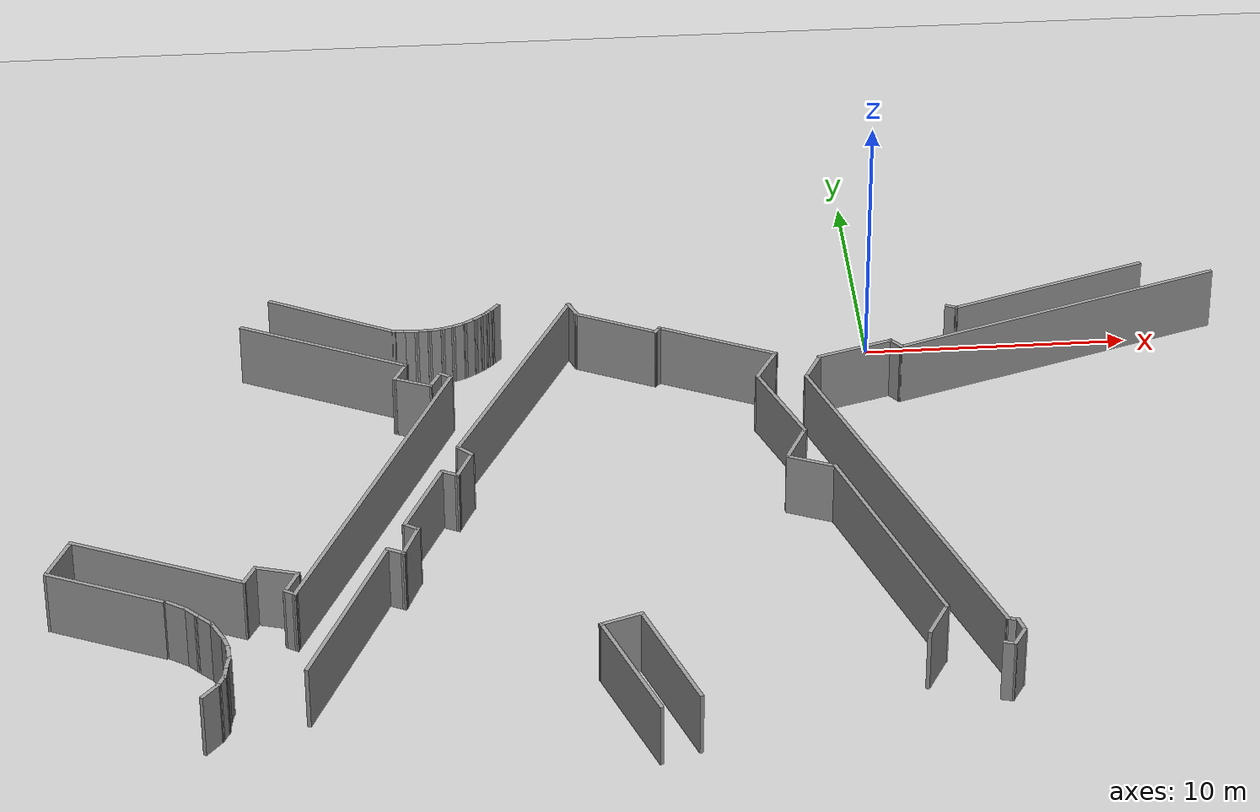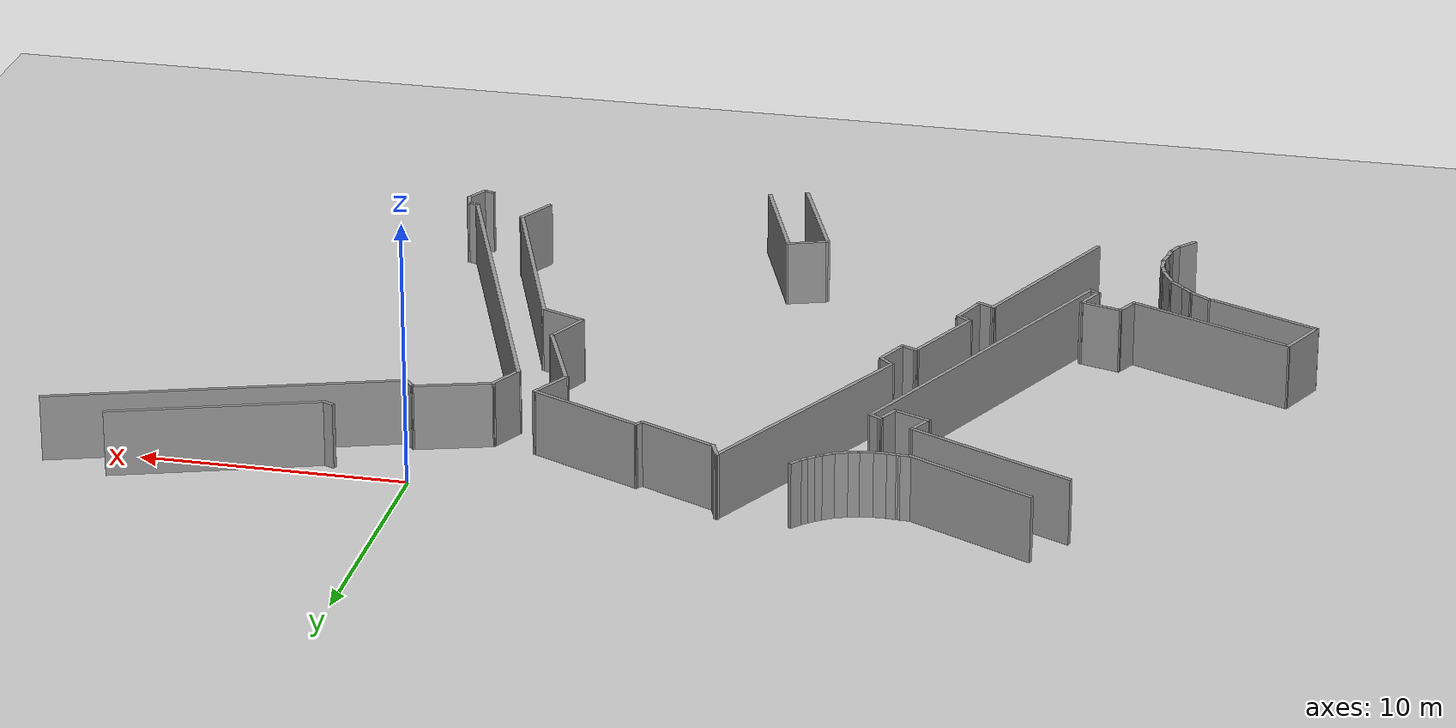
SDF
<sdf version="1.6">
 <world name="default">
  <model name="ground_plane">
   <static>1</static>
   <link name="link">
    <collision name="collision">
     <geometry><plane><normal>0 0 1</normal><size>100 100</size></plane></geometry>
     <surface><friction><ode><mu>100</mu><mu2>50</mu2></ode></friction></surface>
    </collision>
    <visual name="visual">
     <cast_shadows>0</cast_shadows>
     <geometry><plane><normal>0 0 1</normal><size>100 100</size></plane></geometry>
     <material>
      <script><uri>file://media/materials/scripts/gazebo.material</uri><name>Gazebo/Grey</name></script>
     </material>
    </visual>
   </link>
  </model>
  <model name="3rd_floor">
   <pose>-15.2077 -10.9942 0 0 -0 0</pose>
   <link name="Wall_10">
    <collision name="Wall_10_Collision">
     <geometry><box><size>13.264 0.15 2.5</size></box></geometry>
     <pose>0 0 1.25 0 -0 0</pose>
    </collision>
    <visual name="Wall_10_Visual">
     <pose>0 0 1.25 0 -0 0</pose>
     <geometry><box><size>13.264 0.15 2.5</size></box></geometry>
     <material>
      <script><uri>file://media/materials/scripts/gazebo.material</uri><name>Gazebo/Grey</name></script>
      <ambient>1 1 1 1</ambient>
     </material>
    </visual>
    <pose>22.3323 9.76472 0 0 0 -2.81688</pose>
   </link>
   <link name="Wall_11">
    <collision name="Wall_11_Collision">
     <geometry><box><size>0.704563 0.15 2.5</size></box></geometry>
     <pose>0 0 1.25 0 -0 0</pose>
    </collision>
    <visual name="Wall_11_Visual">
     <pose>0 0 1.25 0 -0 0</pose>
     <geometry><box><size>0.704563 0.15 2.5</size></box></geometry>
     <material>
      <script><uri>file://media/materials/scripts/gazebo.material</uri><name>Gazebo/Grey</name></script>
      <ambient>1 1 1 1</ambient>
     </material>
    </visual>
    <pose>15.9334 7.89717 0 0 -0 2.29921</pose>
   </link>
   <link name="Wall_12">
    <collision name="Wall_12_Collision">
     <geometry><box><size>3.04965 0.15 2.5</size></box></geometry>
     <pose>0 0 1.25 0 -0 0</pose>
    </collision>
    <visual name="Wall_12_Visual">
     <pose>0 0 1.25 0 -0 0</pose>
     <geometry><box><size>3.04965 0.15 2.5</size></box></geometry>
     <material>
      <script><uri>file://media/materials/scripts/gazebo.material</uri><name>Gazebo/Grey</name></script>
      <ambient>1 1 1 1</ambient>
     </material>
    </visual>
    <pose>14.3645 7.6734 0 0 0 -2.83997</pose>
   </link>
   <link name="Wall_13">
    <collision name="Wall_13_Collision">
     <geometry><box><size>1.54276 0.15 2.5</size></box></geometry>
     <pose>0 0 1.25 0 -0 0</pose>
    </collision>
    <visual name="Wall_13_Visual">
     <pose>0 0 1.25 0 -0 0</pose>
     <geometry><box><size>1.54276 0.15 2.5</size></box></geometry>
     <material>
      <script><uri>file://media/materials/scripts/gazebo.material</uri><name>Gazebo/Grey</name></script>
      <ambient>1 1 1 1</ambient>
     </material>
    </visual>
    <pose>12.6693 6.61951 0 0 0 -2.0334</pose>
   </link>
   <link name="Wall_14">
    <collision name="Wall_14_Collision">
     <geometry><box><size>16.212 0.15 2.5</size></box></geometry>
     <pose>0 0 1.25 0 -0 0</pose>
    </collision>
    <visual name="Wall_14_Visual">
     <pose>0 0 1.25 0 -0 0</pose>
     <geometry><box><size>16.212 0.15 2.5</size></box></geometry>
     <material>
      <script><uri>file://media/materials/scripts/gazebo.material</uri><name>Gazebo/Grey</name></script>
      <ambient>1 1 1 1</ambient>
     </material>
    </visual>
    <pose>15.0905 -1.55572 0 0 0 -1.22369</pose>
   </link>
   <link name="Wall_15">
    <collision name="Wall_15_Collision">
     <geometry><box><size>0.5 0.15 2.5</size></box></geometry>
     <pose>0 0 1.25 0 -0 0</pose>
    </collision>
    <visual name="Wall_15_Visual">
     <pose>0 0 1.25 0 -0 0</pose>
     <geometry><box><size>0.5 0.15 2.5</size></box></geometry>
     <material>
      <script><uri>file://media/materials/scripts/gazebo.material</uri><name>Gazebo/Grey</name></script>
      <ambient>1 1 1 1</ambient>
     </material>
    </visual>
    <pose>17.9914 -9.15306 0 0 0 -0.261799</pose>
   </link>
   <link name="Wall_16">
    <collision name="Wall_16_Collision">
     <geometry><box><size>0.75 0.15 2.5</size></box></geometry>
     <pose>0 0 1.25 0 -0 0</pose>
    </collision>
    <visual name="Wall_16_Visual">
     <pose>0 0 1.25 0 -0 0</pose>
     <geometry><box><size>0.75 0.15 2.5</size></box></geometry>
     <material>
      <script><uri>file://media/materials/scripts/gazebo.material</uri><name>Gazebo/Grey</name></script>
      <ambient>1 1 1 1</ambient>
     </material>
    </visual>
    <pose>18.2381 -9.48813 0 0 0 -1.309</pose>
   </link>
   <link name="Wall_17">
    <collision name="Wall_17_Collision">
     <geometry><box><size>1 0.15 2.5</size></box></geometry>
     <pose>0 0 1.25 0 -0 0</pose>
    </collision>
    <visual name="Wall_17_Visual">
     <pose>0 0 1.25 0 -0 0</pose>
     <geometry><box><size>1 0.15 2.5</size></box></geometry>
     <material>
      <script><uri>file://media/materials/scripts/gazebo.material</uri><name>Gazebo/Grey</name></script>
      <ambient>1 1 1 1</ambient>
     </material>
    </visual>
    <pose>18.1033 -10.146 0 0 0 -2.0944</pose>
   </link>
   <link name="Wall_18">
    <collision name="Wall_18_Collision">
     <geometry><box><size>0.5 0.15 2.5</size></box></geometry>
     <pose>0 0 1.25 0 -0 0</pose>
    </collision>
    <visual name="Wall_18_Visual">
     <pose>0 0 1.25 0 -0 0</pose>
     <geometry><box><size>0.5 0.15 2.5</size></box></geometry>
     <material>
      <script><uri>file://media/materials/scripts/gazebo.material</uri><name>Gazebo/Grey</name></script>
      <ambient>1 1 1 1</ambient>
     </material>
    </visual>
    <pose>17.7217 -10.4687 0 0 -0 2.87979</pose>
   </link>
   <link name="Wall_495">
    <collision name="Wall_495_Collision">
     <geometry><box><size>7.96627 0.15 2.5</size></box></geometry>
     <pose>0 0 1.25 0 -0 0</pose>
    </collision>
    <visual name="Wall_495_Visual">
     <pose>0 0 1.25 0 -0 0</pose>
     <geometry><box><size>7.96627 0.15 2.5</size></box></geometry>
     <material>
      <script><uri>file://media/materials/scripts/gazebo.material</uri><name>Gazebo/Grey</name></script>
      <ambient>1 1 1 1</ambient>
     </material>
    </visual>
    <pose>22.2058 11.362 0 0 0 -2.81489</pose>
   </link>
   <link name="Wall_496">
    <collision name="Wall_496_Collision">
     <geometry><box><size>0.519623 0.15 2.5</size></box></geometry>
     <pose>0 0 1.25 0 -0 0</pose>
    </collision>
    <visual name="Wall_496_Visual">
     <pose>0 0 1.25 0 -0 0</pose>
     <geometry><box><size>0.519623 0.15 2.5</size></box></geometry>
     <material>
      <script><uri>file://media/materials/scripts/gazebo.material</uri><name>Gazebo/Grey</name></script>
      <ambient>1 1 1 1</ambient>
     </material>
    </visual>
    <pose>18.3362 10.1843 0 0 -0 2.71496</pose>
   </link>
   <link name="Wall_500">
    <collision name="Wall_500_Collision">
     <geometry><box><size>4.79051 0.15 2.5</size></box></geometry>
     <pose>0 0 1.25 0 -0 0</pose>
    </collision>
    <visual name="Wall_500_Visual">
     <pose>0 0 1.25 0 -0 0</pose>
     <geometry><box><size>4.79051 0.15 2.5</size></box></geometry>
     <material>
      <script><uri>file://media/materials/scripts/gazebo.material</uri><name>Gazebo/Grey</name></script>
      <ambient>1 1 1 1</ambient>
     </material>
    </visual>
    <pose>9.23979 8.57662 0 0 -0 2.69588</pose>
   </link>
   <link name="Wall_501">
    <collision name="Wall_501_Collision">
     <geometry><box><size>0.447898 0.15 2.5</size></box></geometry>
     <pose>0 0 1.25 0 -0 0</pose>
    </collision>
    <visual name="Wall_501_Visual">
     <pose>0 0 1.25 0 -0 0</pose>
     <geometry><box><size>0.447898 0.15 2.5</size></box></geometry>
     <material>
      <script><uri>file://media/materials/scripts/gazebo.material</uri><name>Gazebo/Grey</name></script>
      <ambient>1 1 1 1</ambient>
     </material>
    </visual>
    <pose>7.05316 9.46058 0 0 0 -2.24554</pose>
   </link>
   <link name="Wall_502">
    <collision name="Wall_502_Collision">
     <geometry><box><size>3.35441 0.15 2.5</size></box></geometry>
     <pose>0 0 1.25 0 -0 0</pose>
    </collision>
    <visual name="Wall_502_Visual">
     <pose>0 0 1.25 0 -0 0</pose>
     <geometry><box><size>3.35441 0.15 2.5</size></box></geometry>
     <material>
      <script><uri>file://media/materials/scripts/gazebo.material</uri><name>Gazebo/Grey</name></script>
      <ambient>1 1 1 1</ambient>
     </material>
    </visual>
    <pose>5.51788 10.0421 0 0 -0 2.69093</pose>
   </link>
   <link name="Wall_503">
    <collision name="Wall_503_Collision">
     <geometry><box><size>0.901617 0.15 2.5</size></box></geometry>
     <pose>0 0 1.25 0 -0 0</pose>
    </collision>
    <visual name="Wall_503_Visual">
     <pose>0 0 1.25 0 -0 0</pose>
     <geometry><box><size>0.901617 0.15 2.5</size></box></geometry>
     <material>
      <script><uri>file://media/materials/scripts/gazebo.material</uri><name>Gazebo/Grey</name></script>
      <ambient>1 1 1 1</ambient>
     </material>
    </visual>
    <pose>3.93606 11.0889 0 0 -0 1.9513</pose>
   </link>
   <link name="Wall_504">
    <collision name="Wall_504_Collision">
     <geometry><box><size>10.2204 0.15 2.5</size></box></geometry>
     <pose>0 0 1.25 0 -0 0</pose>
    </collision>
    <visual name="Wall_504_Visual">
     <pose>0 0 1.25 0 -0 0</pose>
     <geometry><box><size>10.2204 0.15 2.5</size></box></geometry>
     <material>
      <script><uri>file://media/materials/scripts/gazebo.material</uri><name>Gazebo/Grey</name></script>
      <ambient>1 1 1 1</ambient>
     </material>
    </visual>
    <pose>1.51682 6.94829 0 0 0 -2.04064</pose>
   </link>
   <link name="Wall_505">
    <collision name="Wall_505_Collision">
     <geometry><box><size>0.807948 0.15 2.5</size></box></geometry>
     <pose>0 0 1.25 0 -0 0</pose>
    </collision>
    <visual name="Wall_505_Visual">
     <pose>0 0 1.25 0 -0 0</pose>
     <geometry><box><size>0.807948 0.15 2.5</size></box></geometry>
     <material>
      <script><uri>file://media/materials/scripts/gazebo.material</uri><name>Gazebo/Grey</name></script>
      <ambient>1 1 1 1</ambient>
     </material>
    </visual>
    <pose>-0.530233 2.22611 0 0 0 -0.785398</pose>
   </link>
   <link name="Wall_506">
    <collision name="Wall_506_Collision">
     <geometry><box><size>1.52462 0.15 2.5</size></box></geometry>
     <pose>0 0 1.25 0 -0 0</pose>
    </collision>
    <visual name="Wall_506_Visual">
     <pose>0 0 1.25 0 -0 0</pose>
     <geometry><box><size>1.52462 0.15 2.5</size></box></geometry>
     <material>
      <script><uri>file://media/materials/scripts/gazebo.material</uri><name>Gazebo/Grey</name></script>
      <ambient>1 1 1 1</ambient>
     </material>
    </visual>
    <pose>-0.576757 1.36542 0 0 0 -1.98902</pose>
   </link>
   <link name="Wall_507">
    <collision name="Wall_507_Collision">
     <geometry><box><size>0.774184 0.15 2.5</size></box></geometry>
     <pose>0 0 1.25 0 -0 0</pose>
    </collision>
    <visual name="Wall_507_Visual">
     <pose>0 0 1.25 0 -0 0</pose>
     <geometry><box><size>0.774184 0.15 2.5</size></box></geometry>
     <material>
      <script><uri>file://media/materials/scripts/gazebo.material</uri><name>Gazebo/Grey</name></script>
      <ambient>1 1 1 1</ambient>
     </material>
    </visual>
    <pose>-1.13505 0.876915 0 0 -0 2.67794</pose>
   </link>
   <link name="Wall_508">
    <collision name="Wall_508_Collision">
     <geometry><box><size>3.58459 0.15 2.5</size></box></geometry>
     <pose>0 0 1.25 0 -0 0</pose>
    </collision>
    <visual name="Wall_508_Visual">
     <pose>0 0 1.25 0 -0 0</pose>
     <geometry><box><size>3.58459 0.15 2.5</size></box></geometry>
     <material>
      <script><uri>file://media/materials/scripts/gazebo.material</uri><name>Gazebo/Grey</name></script>
      <ambient>1 1 1 1</ambient>
     </material>
    </visual>
    <pose>-2.13531 -0.542065 0 0 0 -2.00415</pose>
   </link>
   <link name="Wall_509">
    <collision name="Wall_509_Collision">
     <geometry><box><size>0.692557 0.15 2.5</size></box></geometry>
     <pose>0 0 1.25 0 -0 0</pose>
    </collision>
    <visual name="Wall_509_Visual">
     <pose>0 0 1.25 0 -0 0</pose>
     <geometry><box><size>0.692557 0.15 2.5</size></box></geometry>
     <material>
      <script><uri>file://media/materials/scripts/gazebo.material</uri><name>Gazebo/Grey</name></script>
      <ambient>1 1 1 1</ambient>
     </material>
    </visual>
    <pose>-2.62381 -2.24019 0 0 0 -0.54042</pose>
   </link>
   <link name="Wall_511">
    <collision name="Wall_511_Collision">
     <geometry><box><size>1.65323 0.15 2.5</size></box></geometry>
     <pose>0 0 1.25 0 -0 0</pose>
    </collision>
    <visual name="Wall_511_Visual">
     <pose>0 0 1.25 0 -0 0</pose>
     <geometry><box><size>1.65323 0.15 2.5</size></box></geometry>
     <material>
      <script><uri>file://media/materials/scripts/gazebo.material</uri><name>Gazebo/Grey</name></script>
      <ambient>1 1 1 1</ambient>
     </material>
    </visual>
    <pose>-2.67033 -3.07762 0 0 0 -1.9513</pose>
   </link>
   <link name="Wall_512">
    <collision name="Wall_512_Collision">
     <geometry><box><size>0.774184 0.15 2.5</size></box></geometry>
     <pose>0 0 1.25 0 -0 0</pose>
    </collision>
    <visual name="Wall_512_Visual">
     <pose>0 0 1.25 0 -0 0</pose>
     <geometry><box><size>0.774184 0.15 2.5</size></box></geometry>
     <material>
      <script><uri>file://media/materials/scripts/gazebo.material</uri><name>Gazebo/Grey</name></script>
      <ambient>1 1 1 1</ambient>
     </material>
    </visual>
    <pose>-3.22862 -3.63591 0 0 -0 2.67794</pose>
   </link>
   <link name="Wall_513">
    <collision name="Wall_513_Collision">
     <geometry><box><size>7.3774 0.15 2.5</size></box></geometry>
     <pose>0 0 1.25 0 -0 0</pose>
    </collision>
    <visual name="Wall_513_Visual">
     <pose>0 0 1.25 0 -0 0</pose>
     <geometry><box><size>7.3774 0.15 2.5</size></box></geometry>
     <material>
      <script><uri>file://media/materials/scripts/gazebo.material</uri><name>Gazebo/Grey</name></script>
      <ambient>1 1 1 1</ambient>
     </material>
    </visual>
    <pose>-4.97327 -6.79953 0 0 0 -1.98837</pose>
   </link>
   <link name="Wall_516">
    <collision name="Wall_516_Collision">
     <geometry><box><size>5.11064 0.15 2.5</size></box></geometry>
     <pose>0 0 1.25 0 -0 0</pose>
    </collision>
    <visual name="Wall_516_Visual">
     <pose>0 0 1.25 0 -0 0</pose>
     <geometry><box><size>5.11064 0.15 2.5</size></box></geometry>
     <material>
      <script><uri>file://media/materials/scripts/gazebo.material</uri><name>Gazebo/Grey</name></script>
      <ambient>1 1 1 1</ambient>
     </material>
    </visual>
    <pose>4.61066 -10.7075 0 0 -0 1.92518</pose>
   </link>
   <link name="Wall_517">
    <collision name="Wall_517_Collision">
     <geometry><box><size>1.68035 0.15 2.5</size></box></geometry>
     <pose>0 0 1.25 0 -0 0</pose>
    </collision>
    <visual name="Wall_517_Visual">
     <pose>0 0 1.25 0 -0 0</pose>
     <geometry><box><size>1.68035 0.15 2.5</size></box></geometry>
     <material>
      <script><uri>file://media/materials/scripts/gazebo.material</uri><name>Gazebo/Grey</name></script>
      <ambient>1 1 1 1</ambient>
     </material>
    </visual>
    <pose>4.47109 -8.12546 0 0 -0 0.340979</pose>
   </link>
   <link name="Wall_518">
    <collision name="Wall_518_Collision">
     <geometry><box><size>5.09468 0.15 2.5</size></box></geometry>
     <pose>0 0 1.25 0 -0 0</pose>
    </collision>
    <visual name="Wall_518_Visual">
     <pose>0 0 1.25 0 -0 0</pose>
     <geometry><box><size>5.09468 0.15 2.5</size></box></geometry>
     <material>
      <script><uri>file://media/materials/scripts/gazebo.material</uri><name>Gazebo/Grey</name></script>
      <ambient>1 1 1 1</ambient>
     </material>
    </visual>
    <pose>6.02964 -10.1958 0 0 0 -1.22524</pose>
   </link>
   <link name="Wall_520">
    <collision name="Wall_520_Collision">
     <geometry><box><size>1.73181 0.15 2.5</size></box></geometry>
     <pose>0 0 1.25 0 -0 0</pose>
    </collision>
    <visual name="Wall_520_Visual">
     <pose>0 0 1.25 0 -0 0</pose>
     <geometry><box><size>1.73181 0.15 2.5</size></box></geometry>
     <material>
      <script><uri>file://media/materials/scripts/gazebo.material</uri><name>Gazebo/Grey</name></script>
      <ambient>1 1 1 1</ambient>
     </material>
    </visual>
    <pose>15.4275 -8.93963 0 0 -0 1.08084</pose>
   </link>
   <link name="Wall_521">
    <collision name="Wall_521_Collision">
     <geometry><box><size>9.16952 0.15 2.5</size></box></geometry>
     <pose>0 0 1.25 0 -0 0</pose>
    </collision>
    <visual name="Wall_521_Visual">
     <pose>0 0 1.25 0 -0 0</pose>
     <geometry><box><size>9.16952 0.15 2.5</size></box></geometry>
     <material>
      <script><uri>file://media/materials/scripts/gazebo.material</uri><name>Gazebo/Grey</name></script>
      <ambient>1 1 1 1</ambient>
     </material>
    </visual>
    <pose>14.3109 -3.98483 0 0 -0 1.90723</pose>
   </link>
   <link name="Wall_522">
    <collision name="Wall_522_Collision">
     <geometry><box><size>1.92158 0.15 2.5</size></box></geometry>
     <pose>0 0 1.25 0 -0 0</pose>
    </collision>
    <visual name="Wall_522_Visual">
     <pose>0 0 1.25 0 -0 0</pose>
     <geometry><box><size>1.92158 0.15 2.5</size></box></geometry>
     <material>
      <script><uri>file://media/materials/scripts/gazebo.material</uri><name>Gazebo/Grey</name></script>
      <ambient>1 1 1 1</ambient>
     </material>
    </visual>
    <pose>12.008 0.621034 0 0 -0 2.7367</pose>
   </link>
   <link name="Wall_524">
    <collision name="Wall_524_Collision">
     <geometry><box><size>1.79487 0.15 2.5</size></box></geometry>
     <pose>0 0 1.25 0 -0 0</pose>
    </collision>
    <visual name="Wall_524_Visual">
     <pose>0 0 1.25 0 -0 0</pose>
     <geometry><box><size>1.79487 0.15 2.5</size></box></geometry>
     <material>
      <script><uri>file://media/materials/scripts/gazebo.material</uri><name>Gazebo/Grey</name></script>
      <ambient>1 1 1 1</ambient>
     </material>
    </visual>
    <pose>10.9379 6.85524 0 0 0 -2.0724</pose>
   </link>
   <link name="Wall_525">
    <collision name="Wall_525_Collision">
     <geometry><box><size>3.95132 0.15 2.5</size></box></geometry>
     <pose>0 0 1.25 0 -0 0</pose>
    </collision>
    <visual name="Wall_525_Visual">
     <pose>0 0 1.25 0 -0 0</pose>
     <geometry><box><size>3.95132 0.15 2.5</size></box></geometry>
     <material>
      <script><uri>file://media/materials/scripts/gazebo.material</uri><name>Gazebo/Grey</name></script>
      <ambient>1 1 1 1</ambient>
     </material>
    </visual>
    <pose>11.2403 4.36621 0 0 0 -1.19484</pose>
   </link>
   <link name="Wall_526">
    <collision name="Wall_526_Collision">
     <geometry><box><size>1.85623 0.15 2.5</size></box></geometry>
     <pose>0 0 1.25 0 -0 0</pose>
    </collision>
    <visual name="Wall_526_Visual">
     <pose>0 0 1.25 0 -0 0</pose>
     <geometry><box><size>1.85623 0.15 2.5</size></box></geometry>
     <material>
      <script><uri>file://media/materials/scripts/gazebo.material</uri><name>Gazebo/Grey</name></script>
      <ambient>1 1 1 1</ambient>
     </material>
    </visual>
    <pose>11.566 1.83065 0 0 0 -2.02225</pose>
   </link>
   <link name="Wall_571">
    <collision name="Wall_571_Collision">
     <geometry><box><size>0.545246 0.15 2.5</size></box></geometry>
     <pose>0 0 1.25 0 -0 0</pose>
    </collision>
    <visual name="Wall_571_Visual">
     <pose>0 0 1.25 0 -0 0</pose>
     <geometry><box><size>0.545246 0.15 2.5</size></box></geometry>
     <material>
      <script><uri>file://media/materials/scripts/gazebo.material</uri><name>Gazebo/Grey</name></script>
      <ambient>1 1 1 1</ambient>
     </material>
    </visual>
    <pose>0.970736 11.424 0 0 0 -2.26272</pose>
   </link>
   <link name="Wall_572">
    <collision name="Wall_572_Collision">
     <geometry><box><size>0.432843 0.15 2.5</size></box></geometry>
     <pose>0 0 1.25 0 -0 0</pose>
    </collision>
    <visual name="Wall_572_Visual">
     <pose>0 0 1.25 0 -0 0</pose>
     <geometry><box><size>0.432843 0.15 2.5</size></box></geometry>
     <material>
      <script><uri>file://media/materials/scripts/gazebo.material</uri><name>Gazebo/Grey</name></script>
      <ambient>1 1 1 1</ambient>
     </material>
    </visual>
    <pose>0.744649 11.1718 0 0 0 -2.35619</pose>
   </link>
   <link name="Wall_573">
    <collision name="Wall_573_Collision">
     <geometry><box><size>0.43391 0.15 2.5</size></box></geometry>
     <pose>0 0 1.25 0 -0 0</pose>
    </collision>
    <visual name="Wall_573_Visual">
     <pose>0 0 1.25 0 -0 0</pose>
     <geometry><box><size>0.43391 0.15 2.5</size></box></geometry>
     <material>
      <script><uri>file://media/materials/scripts/gazebo.material</uri><name>Gazebo/Grey</name></script>
      <ambient>1 1 1 1</ambient>
     </material>
    </visual>
    <pose>0.535954 10.9805 0 0 0 -2.44293</pose>
   </link>
   <link name="Wall_574">
    <collision name="Wall_574_Collision">
     <geometry><box><size>0.442179 0.15 2.5</size></box></geometry>
     <pose>0 0 1.25 0 -0 0</pose>
    </collision>
    <visual name="Wall_574_Visual">
     <pose>0 0 1.25 0 -0 0</pose>
     <geometry><box><size>0.442179 0.15 2.5</size></box></geometry>
     <material>
      <script><uri>file://media/materials/scripts/gazebo.material</uri><name>Gazebo/Grey</name></script>
      <ambient>1 1 1 1</ambient>
     </material>
    </visual>
    <pose>0.309867 10.8022 0 0 0 -2.50404</pose>
   </link>
   <link name="Wall_575">
    <collision name="Wall_575_Collision">
     <geometry><box><size>0.632354 0.15 2.5</size></box></geometry>
     <pose>0 0 1.25 0 -0 0</pose>
    </collision>
    <visual name="Wall_575_Visual">
     <pose>0 0 1.25 0 -0 0</pose>
     <geometry><box><size>0.632354 0.15 2.5</size></box></geometry>
     <material>
      <script><uri>file://media/materials/scripts/gazebo.material</uri><name>Gazebo/Grey</name></script>
      <ambient>1 1 1 1</ambient>
     </material>
    </visual>
    <pose>-0.007524 10.5805 0 0 0 -2.54859</pose>
   </link>
   <link name="Wall_576">
    <collision name="Wall_576_Collision">
     <geometry><box><size>0.634466 0.15 2.5</size></box></geometry>
     <pose>0 0 1.25 0 -0 0</pose>
    </collision>
    <visual name="Wall_576_Visual">
     <pose>0 0 1.25 0 -0 0</pose>
     <geometry><box><size>0.634466 0.15 2.5</size></box></geometry>
     <material>
      <script><uri>file://media/materials/scripts/gazebo.material</uri><name>Gazebo/Grey</name></script>
      <ambient>1 1 1 1</ambient>
     </material>
    </visual>
    <pose>-0.433611 10.3587 0 0 0 -2.77442</pose>
   </link>
   <link name="Wall_577">
    <collision name="Wall_577_Collision">
     <geometry><box><size>0.568115 0.15 2.5</size></box></geometry>
     <pose>0 0 1.25 0 -0 0</pose>
    </collision>
    <visual name="Wall_577_Visual">
     <pose>0 0 1.25 0 -0 0</pose>
     <geometry><box><size>0.568115 0.15 2.5</size></box></geometry>
     <material>
      <script><uri>file://media/materials/scripts/gazebo.material</uri><name>Gazebo/Grey</name></script>
      <ambient>1 1 1 1</ambient>
     </material>
    </visual>
    <pose>-0.859698 10.2109 0 0 0 -2.84615</pose>
   </link>
   <link name="Wall_578">
    <collision name="Wall_578_Collision">
     <geometry><box><size>0.643205 0.15 2.5</size></box></geometry>
     <pose>0 0 1.25 0 -0 0</pose>
    </collision>
    <visual name="Wall_578_Visual">
     <pose>0 0 1.25 0 -0 0</pose>
     <geometry><box><size>0.643205 0.15 2.5</size></box></geometry>
     <material>
      <script><uri>file://media/materials/scripts/gazebo.material</uri><name>Gazebo/Grey</name></script>
      <ambient>1 1 1 1</ambient>
     </material>
    </visual>
    <pose>-1.30318 10.1109 0 0 0 -2.98224</pose>
   </link>
   <link name="Wall_579">
    <collision name="Wall_579_Collision">
     <geometry><box><size>0.628261 0.15 2.5</size></box></geometry>
     <pose>0 0 1.25 0 -0 0</pose>
    </collision>
    <visual name="Wall_579_Visual">
     <pose>0 0 1.25 0 -0 0</pose>
     <geometry><box><size>0.628261 0.15 2.5</size></box></geometry>
     <material>
      <script><uri>file://media/materials/scripts/gazebo.material</uri><name>Gazebo/Grey</name></script>
      <ambient>1 1 1 1</ambient>
     </material>
    </visual>
    <pose>-1.78579 10.0718 0 0 -0 3.14159</pose>
   </link>
   <link name="Wall_580">
    <collision name="Wall_580_Collision">
     <geometry><box><size>0.568206 0.15 2.5</size></box></geometry>
     <pose>0 0 1.25 0 -0 0</pose>
    </collision>
    <visual name="Wall_580_Visual">
     <pose>0 0 1.25 0 -0 0</pose>
     <geometry><box><size>0.568206 0.15 2.5</size></box></geometry>
     <material>
      <script><uri>file://media/materials/scripts/gazebo.material</uri><name>Gazebo/Grey</name></script>
      <ambient>1 1 1 1</ambient>
     </material>
    </visual>
    <pose>-2.23361 10.0848 0 0 -0 3.07917</pose>
   </link>
   <link name="Wall_581">
    <collision name="Wall_581_Collision">
     <geometry><box><size>0.58513 0.15 2.5</size></box></geometry>
     <pose>0 0 1.25 0 -0 0</pose>
    </collision>
    <visual name="Wall_581_Visual">
     <pose>0 0 1.25 0 -0 0</pose>
     <geometry><box><size>0.58513 0.15 2.5</size></box></geometry>
     <material>
      <script><uri>file://media/materials/scripts/gazebo.material</uri><name>Gazebo/Grey</name></script>
      <ambient>1 1 1 1</ambient>
     </material>
    </visual>
    <pose>-2.6597 10.1066 0 0 -0 3.10161</pose>
   </link>
   <link name="Wall_583">
    <collision name="Wall_583_Collision">
     <geometry><box><size>0.93269 0.15 2.5</size></box></geometry>
     <pose>0 0 1.25 0 -0 0</pose>
    </collision>
    <visual name="Wall_583_Visual">
     <pose>0 0 1.25 0 -0 0</pose>
     <geometry><box><size>0.93269 0.15 2.5</size></box></geometry>
     <material>
      <script><uri>file://media/materials/scripts/gazebo.material</uri><name>Gazebo/Grey</name></script>
      <ambient>1 1 1 1</ambient>
     </material>
    </visual>
    <pose>-10.9008 -6.21363 0 0 0 -0.596199</pose>
   </link>
   <link name="Wall_584">
    <collision name="Wall_584_Collision">
     <geometry><box><size>0.689989 0.15 2.5</size></box></geometry>
     <pose>0 0 1.25 0 -0 0</pose>
    </collision>
    <visual name="Wall_584_Visual">
     <pose>0 0 1.25 0 -0 0</pose>
     <geometry><box><size>0.689989 0.15 2.5</size></box></geometry>
     <material>
      <script><uri>file://media/materials/scripts/gazebo.material</uri><name>Gazebo/Grey</name></script>
      <ambient>1 1 1 1</ambient>
     </material>
    </visual>
    <pose>-10.3919 -6.62998 0 0 0 -0.815692</pose>
   </link>
   <link name="Wall_585">
    <collision name="Wall_585_Collision">
     <geometry><box><size>0.869656 0.15 2.5</size></box></geometry>
     <pose>0 0 1.25 0 -0 0</pose>
    </collision>
    <visual name="Wall_585_Visual">
     <pose>0 0 1.25 0 -0 0</pose>
     <geometry><box><size>0.869656 0.15 2.5</size></box></geometry>
     <material>
      <script><uri>file://media/materials/scripts/gazebo.material</uri><name>Gazebo/Grey</name></script>
      <ambient>1 1 1 1</ambient>
     </material>
    </visual>
    <pose>-9.95245 -7.08103 0 0 0 -0.785398</pose>
   </link>
   <link name="Wall_586">
    <collision name="Wall_586_Collision">
     <geometry><box><size>1.05001 0.15 2.5</size></box></geometry>
     <pose>0 0 1.25 0 -0 0</pose>
    </collision>
    <visual name="Wall_586_Visual">
     <pose>0 0 1.25 0 -0 0</pose>
     <geometry><box><size>1.05001 0.15 2.5</size></box></geometry>
     <material>
      <script><uri>file://media/materials/scripts/gazebo.material</uri><name>Gazebo/Grey</name></script>
      <ambient>1 1 1 1</ambient>
     </material>
    </visual>
    <pose>-9.5014 -7.74025 0 0 0 -1.11864</pose>
   </link>
   <link name="Wall_587">
    <collision name="Wall_587_Collision">
     <geometry><box><size>0.706098 0.15 2.5</size></box></geometry>
     <pose>0 0 1.25 0 -0 0</pose>
    </collision>
    <visual name="Wall_587_Visual">
     <pose>0 0 1.25 0 -0 0</pose>
     <geometry><box><size>0.706098 0.15 2.5</size></box></geometry>
     <material>
      <script><uri>file://media/materials/scripts/gazebo.material</uri><name>Gazebo/Grey</name></script>
      <ambient>1 1 1 1</ambient>
     </material>
    </visual>
    <pose>-9.22383 -8.41104 0 0 0 -1.27536</pose>
   </link>
   <link name="Wall_588">
    <collision name="Wall_588_Collision">
     <geometry><box><size>0.753172 0.15 2.5</size></box></geometry>
     <pose>0 0 1.25 0 -0 0</pose>
    </collision>
    <visual name="Wall_588_Visual">
     <pose>0 0 1.25 0 -0 0</pose>
     <geometry><box><size>0.753172 0.15 2.5</size></box></geometry>
     <material>
      <script><uri>file://media/materials/scripts/gazebo.material</uri><name>Gazebo/Grey</name></script>
      <ambient>1 1 1 1</ambient>
     </material>
    </visual>
    <pose>-9.11974 -8.97774 0 0 0 -1.49402</pose>
   </link>
   <link name="Wall_589">
    <collision name="Wall_589_Collision">
     <geometry><box><size>0.644476 0.15 2.5</size></box></geometry>
     <pose>0 0 1.25 0 -0 0</pose>
    </collision>
    <visual name="Wall_589_Visual">
     <pose>0 0 1.25 0 -0 0</pose>
     <geometry><box><size>0.644476 0.15 2.5</size></box></geometry>
     <material>
      <script><uri>file://media/materials/scripts/gazebo.material</uri><name>Gazebo/Grey</name></script>
      <ambient>1 1 1 1</ambient>
     </material>
    </visual>
    <pose>-9.14287 -9.52131 0 0 0 -1.75902</pose>
   </link>
   <link name="Wall_590">
    <collision name="Wall_590_Collision">
     <geometry><box><size>0.68651 0.15 2.5</size></box></geometry>
     <pose>0 0 1.25 0 -0 0</pose>
    </collision>
    <visual name="Wall_590_Visual">
     <pose>0 0 1.25 0 -0 0</pose>
     <geometry><box><size>0.68651 0.15 2.5</size></box></geometry>
     <material>
      <script><uri>file://media/materials/scripts/gazebo.material</uri><name>Gazebo/Grey</name></script>
      <ambient>1 1 1 1</ambient>
     </material>
    </visual>
    <pose>-9.22383 -10.0302 0 0 0 -1.7005</pose>
   </link>
   <link name="Wall_591">
    <collision name="Wall_591_Collision">
     <geometry><box><size>0.636293 0.15 2.5</size></box></geometry>
     <pose>0 0 1.25 0 -0 0</pose>
    </collision>
    <visual name="Wall_591_Visual">
     <pose>0 0 1.25 0 -0 0</pose>
     <geometry><box><size>0.636293 0.15 2.5</size></box></geometry>
     <material>
      <script><uri>file://media/materials/scripts/gazebo.material</uri><name>Gazebo/Grey</name></script>
      <ambient>1 1 1 1</ambient>
     </material>
    </visual>
    <pose>-9.36262 -10.5159 0 0 0 -2.01317</pose>
   </link>
   <link name="Wall_592">
    <collision name="Wall_592_Collision">
     <geometry><box><size>0.970403 0.15 2.5</size></box></geometry>
     <pose>0 0 1.25 0 -0 0</pose>
    </collision>
    <visual name="Wall_592_Visual">
     <pose>0 0 1.25 0 -0 0</pose>
     <geometry><box><size>0.970403 0.15 2.5</size></box></geometry>
     <material>
      <script><uri>file://media/materials/scripts/gazebo.material</uri><name>Gazebo/Grey</name></script>
      <ambient>1 1 1 1</ambient>
     </material>
    </visual>
    <pose>-9.7327 -11.0479 0 0 0 -2.27637</pose>
   </link>
   <link name="Wall_78">
    <collision name="Wall_78_Collision">
     <geometry><box><size>5.37354 0.15 2.5</size></box></geometry>
     <pose>0 0 1.25 0 -0 0</pose>
    </collision>
    <visual name="Wall_78_Visual">
     <pose>0 0 1.25 0 -0 0</pose>
     <geometry><box><size>5.37354 0.15 2.5</size></box></geometry>
     <material>
      <script><uri>file://media/materials/scripts/gazebo.material</uri><name>Gazebo/Grey</name></script>
      <ambient>1 1 1 1</ambient>
     </material>
    </visual>
    <pose>-5.18536 11.2859 0 0 -0 2.6659</pose>
   </link>
   <link name="Wall_80">
    <collision name="Wall_80_Collision">
     <geometry><box><size>6.9154 0.15 2.5</size></box></geometry>
     <pose>0 0 1.25 0 -0 0</pose>
    </collision>
    <visual name="Wall_80_Visual">
     <pose>0 0 1.25 0 -0 0</pose>
     <geometry><box><size>6.9154 0.15 2.5</size></box></geometry>
     <material>
      <script><uri>file://media/materials/scripts/gazebo.material</uri><name>Gazebo/Grey</name></script>
      <ambient>1 1 1 1</ambient>
     </material>
    </visual>
    <pose>-5.55474 9.31587 0 0 0 -0.45202</pose>
   </link>
   <link name="Wall_81">
    <collision name="Wall_81_Collision">
     <geometry><box><size>1.09394 0.15 2.5</size></box></geometry>
     <pose>0 0 1.25 0 -0 0</pose>
    </collision>
    <visual name="Wall_81_Visual">
     <pose>0 0 1.25 0 -0 0</pose>
     <geometry><box><size>1.09394 0.15 2.5</size></box></geometry>
     <material>
      <script><uri>file://media/materials/scripts/gazebo.material</uri><name>Gazebo/Grey</name></script>
      <ambient>1 1 1 1</ambient>
     </material>
    </visual>
    <pose>-2.72285 7.41621 0 0 0 -2.03444</pose>
   </link>
   <link name="Wall_82">
    <collision name="Wall_82_Collision">
     <geometry><box><size>1.5681 0.15 2.5</size></box></geometry>
     <pose>0 0 1.25 0 -0 0</pose>
    </collision>
    <visual name="Wall_82_Visual">
     <pose>0 0 1.25 0 -0 0</pose>
     <geometry><box><size>1.5681 0.15 2.5</size></box></geometry>
     <material>
      <script><uri>file://media/materials/scripts/gazebo.material</uri><name>Gazebo/Grey</name></script>
      <ambient>1 1 1 1</ambient>
     </material>
    </visual>
    <pose>-2.28311 6.71264 0 0 0 -0.408149</pose>
   </link>
   <link name="Wall_83">
    <collision name="Wall_83_Collision">
     <geometry><box><size>1.01528 0.15 2.5</size></box></geometry>
     <pose>0 0 1.25 0 -0 0</pose>
    </collision>
    <visual name="Wall_83_Visual">
     <pose>0 0 1.25 0 -0 0</pose>
     <geometry><box><size>1.01528 0.15 2.5</size></box></geometry>
     <material>
      <script><uri>file://media/materials/scripts/gazebo.material</uri><name>Gazebo/Grey</name></script>
      <ambient>1 1 1 1</ambient>
     </material>
    </visual>
    <pose>-1.43882 6.81817 0 0 -0 1.10715</pose>
   </link>
   <link name="Wall_84">
    <collision name="Wall_84_Collision">
     <geometry><box><size>0.608675 0.15 2.5</size></box></geometry>
     <pose>0 0 1.25 0 -0 0</pose>
    </collision>
    <visual name="Wall_84_Visual">
     <pose>0 0 1.25 0 -0 0</pose>
     <geometry><box><size>0.608675 0.15 2.5</size></box></geometry>
     <material>
      <script><uri>file://media/materials/scripts/gazebo.material</uri><name>Gazebo/Grey</name></script>
      <ambient>1 1 1 1</ambient>
     </material>
    </visual>
    <pose>-1.05186 7.08202 0 0 0 -0.566729</pose>
   </link>
   <link name="Wall_86">
    <collision name="Wall_86_Collision">
     <geometry><box><size>14.2812 0.15 2.5</size></box></geometry>
     <pose>0 0 1.25 0 -0 0</pose>
    </collision>
    <visual name="Wall_86_Visual">
     <pose>0 0 1.25 0 -0 0</pose>
     <geometry><box><size>14.2812 0.15 2.5</size></box></geometry>
     <material>
      <script><uri>file://media/materials/scripts/gazebo.material</uri><name>Gazebo/Grey</name></script>
      <ambient>1 1 1 1</ambient>
     </material>
    </visual>
    <pose>-3.83043 0.548755 0 0 0 -2.00494</pose>
   </link>
   <link name="Wall_87">
    <collision name="Wall_87_Collision">
     <geometry><box><size>0.531657 0.15 2.5</size></box></geometry>
     <pose>0 0 1.25 0 -0 0</pose>
    </collision>
    <visual name="Wall_87_Visual">
     <pose>0 0 1.25 0 -0 0</pose>
     <geometry><box><size>0.531657 0.15 2.5</size></box></geometry>
     <material>
      <script><uri>file://media/materials/scripts/gazebo.material</uri><name>Gazebo/Grey</name></script>
      <ambient>1 1 1 1</ambient>
     </material>
    </visual>
    <pose>-6.96431 -5.76024 0 0 -0 2.58299</pose>
   </link>
   <link name="Wall_88">
    <collision name="Wall_88_Collision">
     <geometry><box><size>1.21806 0.15 2.5</size></box></geometry>
     <pose>0 0 1.25 0 -0 0</pose>
    </collision>
    <visual name="Wall_88_Visual">
     <pose>0 0 1.25 0 -0 0</pose>
     <geometry><box><size>1.21806 0.15 2.5</size></box></geometry>
     <material>
      <script><uri>file://media/materials/scripts/gazebo.material</uri><name>Gazebo/Grey</name></script>
      <ambient>1 1 1 1</ambient>
     </material>
    </visual>
    <pose>-6.90362 -5.17363 0 0 -0 1.14103</pose>
   </link>
   <link name="Wall_89">
    <collision name="Wall_89_Collision">
     <geometry><box><size>1.71161 0.15 2.5</size></box></geometry>
     <pose>0 0 1.25 0 -0 0</pose>
    </collision>
    <visual name="Wall_89_Visual">
     <pose>0 0 1.25 0 -0 0</pose>
     <geometry><box><size>1.71161 0.15 2.5</size></box></geometry>
     <material>
      <script><uri>file://media/materials/scripts/gazebo.material</uri><name>Gazebo/Grey</name></script>
      <ambient>1 1 1 1</ambient>
     </material>
    </visual>
    <pose>-7.42955 -4.46566 0 0 -0 2.85262</pose>
   </link>
   <link name="Wall_90">
    <collision name="Wall_90_Collision">
     <geometry><box><size>1.05461 0.15 2.5</size></box></geometry>
     <pose>0 0 1.25 0 -0 0</pose>
    </collision>
    <visual name="Wall_90_Visual">
     <pose>0 0 1.25 0 -0 0</pose>
     <geometry><box><size>1.05461 0.15 2.5</size></box></geometry>
     <material>
      <script><uri>file://media/materials/scripts/gazebo.material</uri><name>Gazebo/Grey</name></script>
      <ambient>1 1 1 1</ambient>
     </material>
    </visual>
    <pose>-8.38025 -4.64771 0 0 0 -2.03444</pose>
   </link>
   <link name="Wall_91">
    <collision name="Wall_91_Collision">
     <geometry><box><size>6.84964 0.15 2.5</size></box></geometry>
     <pose>0 0 1.25 0 -0 0</pose>
    </collision>
    <visual name="Wall_91_Visual">
     <pose>0 0 1.25 0 -0 0</pose>
     <geometry><box><size>6.84964 0.15 2.5</size></box></geometry>
     <material>
      <script><uri>file://media/materials/scripts/gazebo.material</uri><name>Gazebo/Grey</name></script>
      <ambient>1 1 1 1</ambient>
     </material>
    </visual>
    <pose>-11.6369 -3.67678 0 0 -0 2.71846</pose>
   </link>
   <link name="Wall_92">
    <collision name="Wall_92_Collision">
     <geometry><box><size>2.10531 0.15 2.5</size></box></geometry>
     <pose>0 0 1.25 0 -0 0</pose>
    </collision>
    <visual name="Wall_92_Visual">
     <pose>0 0 1.25 0 -0 0</pose>
     <geometry><box><size>2.10531 0.15 2.5</size></box></geometry>
     <material>
      <script><uri>file://media/materials/scripts/gazebo.material</uri><name>Gazebo/Grey</name></script>
      <ambient>1 1 1 1</ambient>
     </material>
    </visual>
    <pose>-15.0959 -3.19131 0 0 0 -1.99742</pose>
   </link>
   <link name="Wall_93">
    <collision name="Wall_93_Collision">
     <geometry><box><size>4.63984 0.15 2.5</size></box></geometry>
     <pose>0 0 1.25 0 -0 0</pose>
    </collision>
    <visual name="Wall_93_Visual">
     <pose>0 0 1.25 0 -0 0</pose>
     <geometry><box><size>4.63984 0.15 2.5</size></box></geometry>
     <material>
      <script><uri>file://media/materials/scripts/gazebo.material</uri><name>Gazebo/Grey</name></script>
      <ambient>1 1 1 1</ambient>
     </material>
    </visual>
    <pose>-13.4574 -5.01181 0 0 0 -0.427373</pose>
   </link>
   <static>1</static>
  </model>
 </world>
</sdf>
